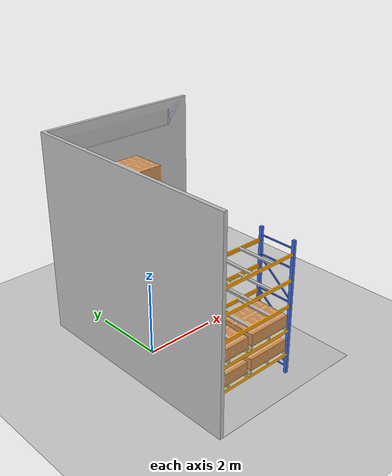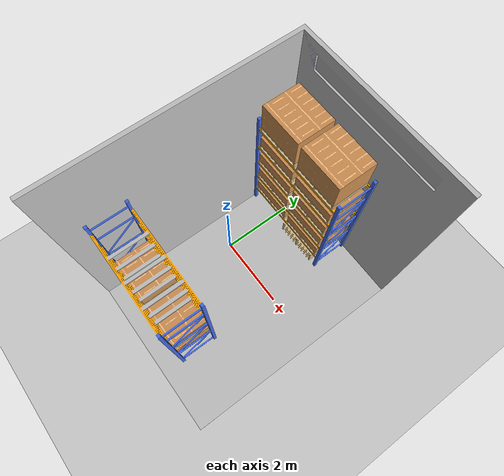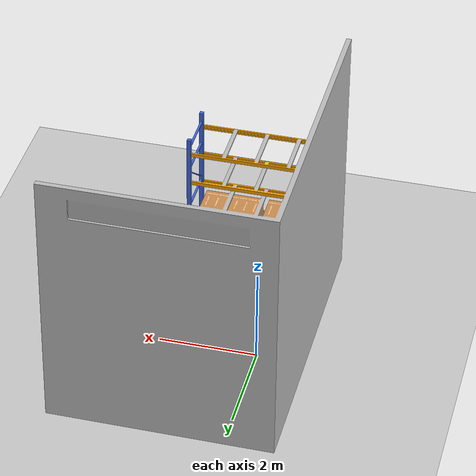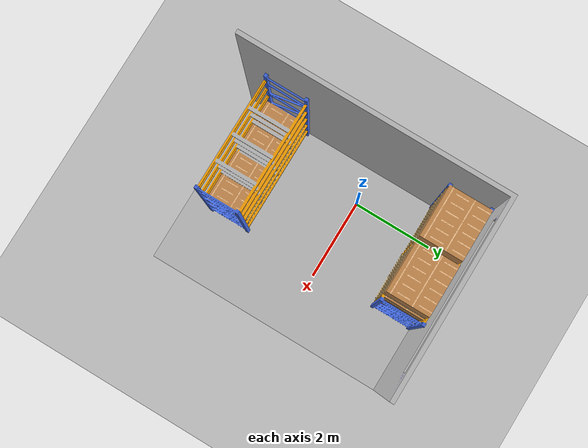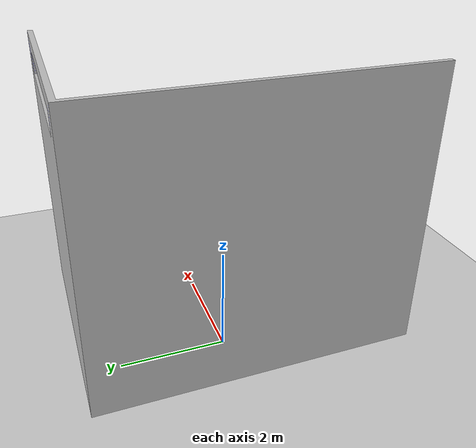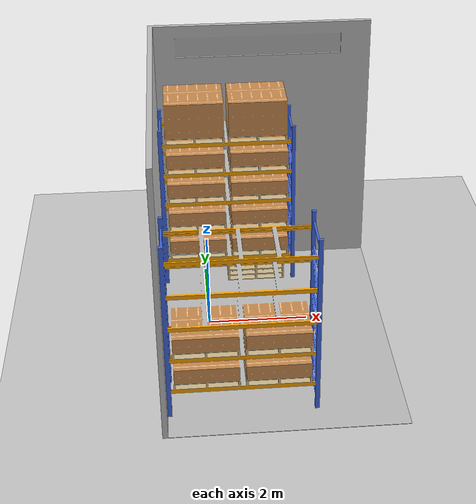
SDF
<?xml version="1.0"?>
<sdf version="1.4">
  <world name="default">
    <include>
      <uri>model://ground_plane</uri>
    </include>
    <include>
      <uri>model://sun</uri>
    </include>
    <include>
       <uri>model://warehouse</uri>
       <pose>-1 -3.5 0  0 0 0</pose>
    </include>

  </world>
</sdf>

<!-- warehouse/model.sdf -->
<sdf version="1.5">
  <model name="My Model">
    <static>true</static>
    <link name="link">
      <visual name="visual">
        <geometry>
          <mesh>
            <uri>model://warehouse/meshes/warehouse.dae</uri>
          </mesh>
        </geometry>
      </visual>
    </link>
  </model>
</sdf>
